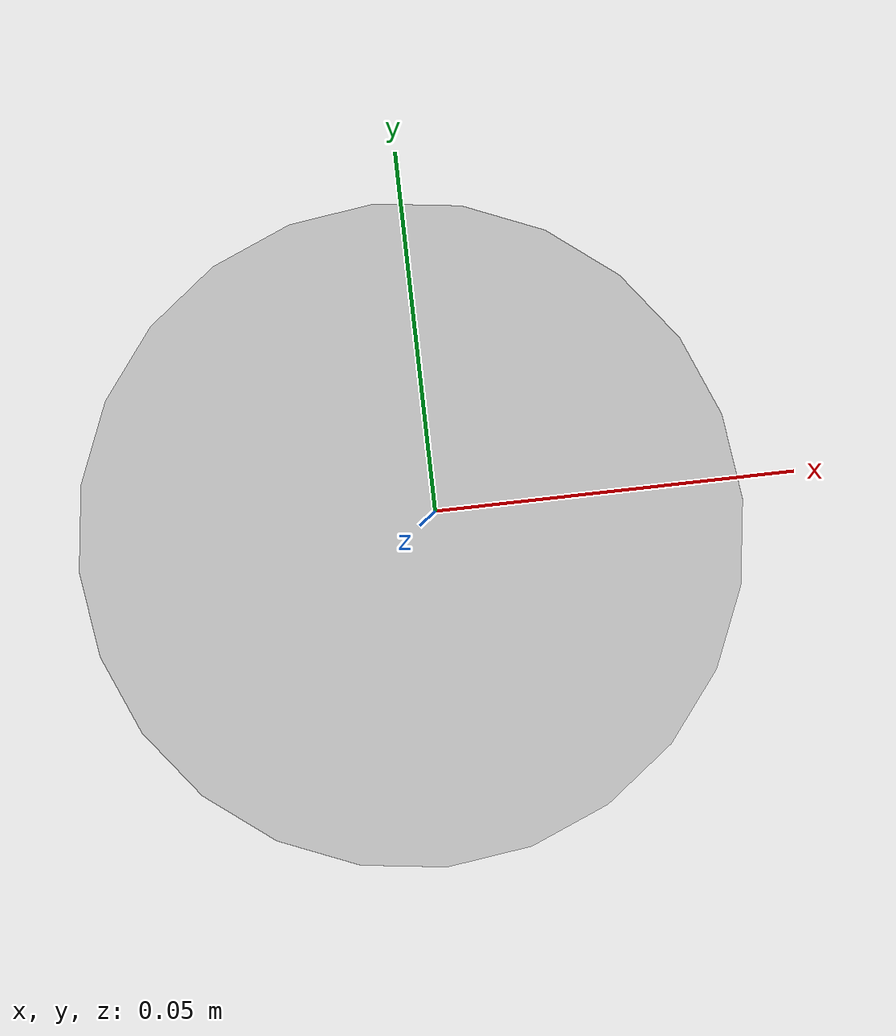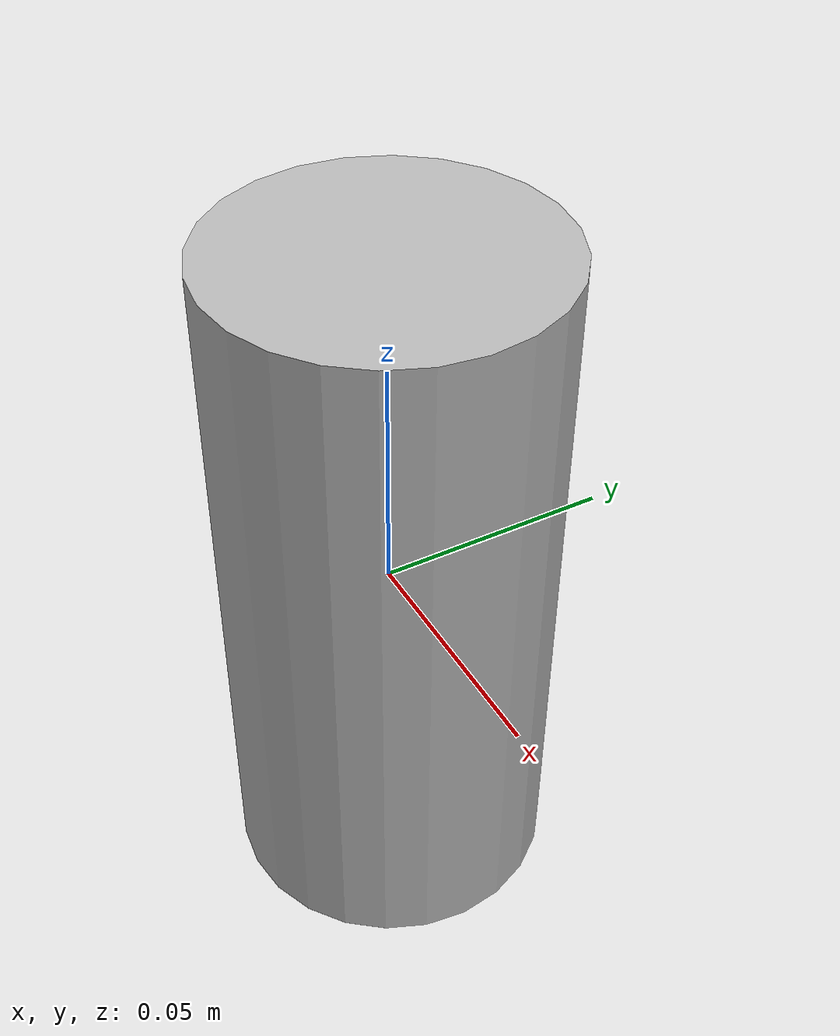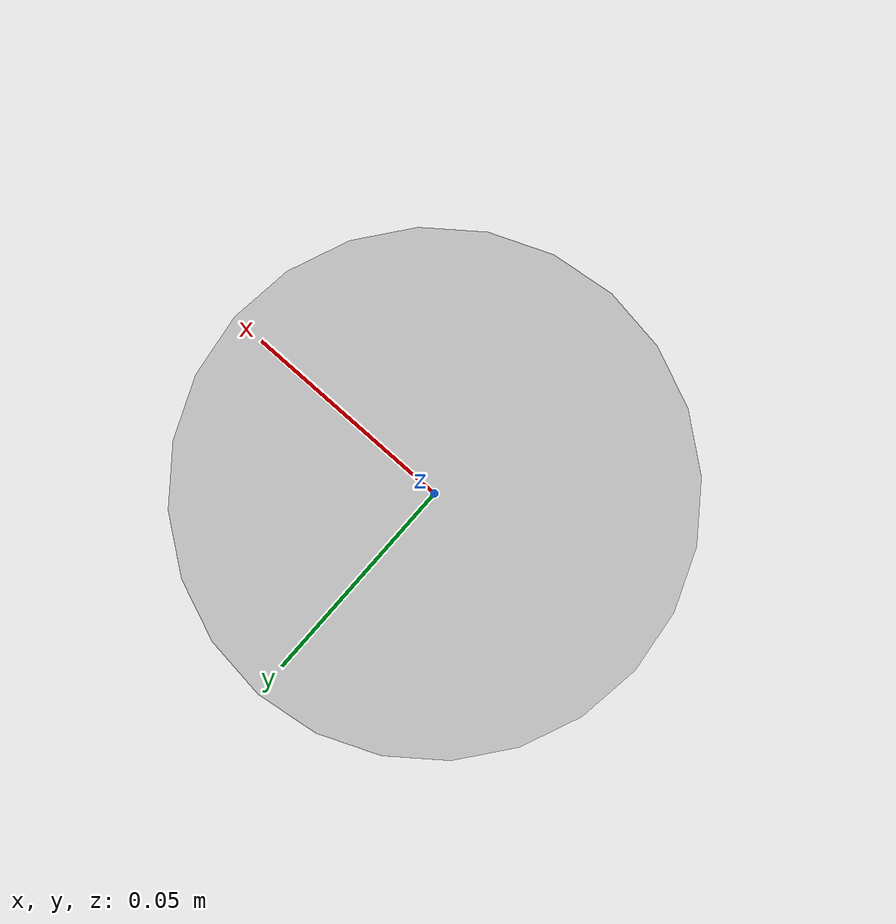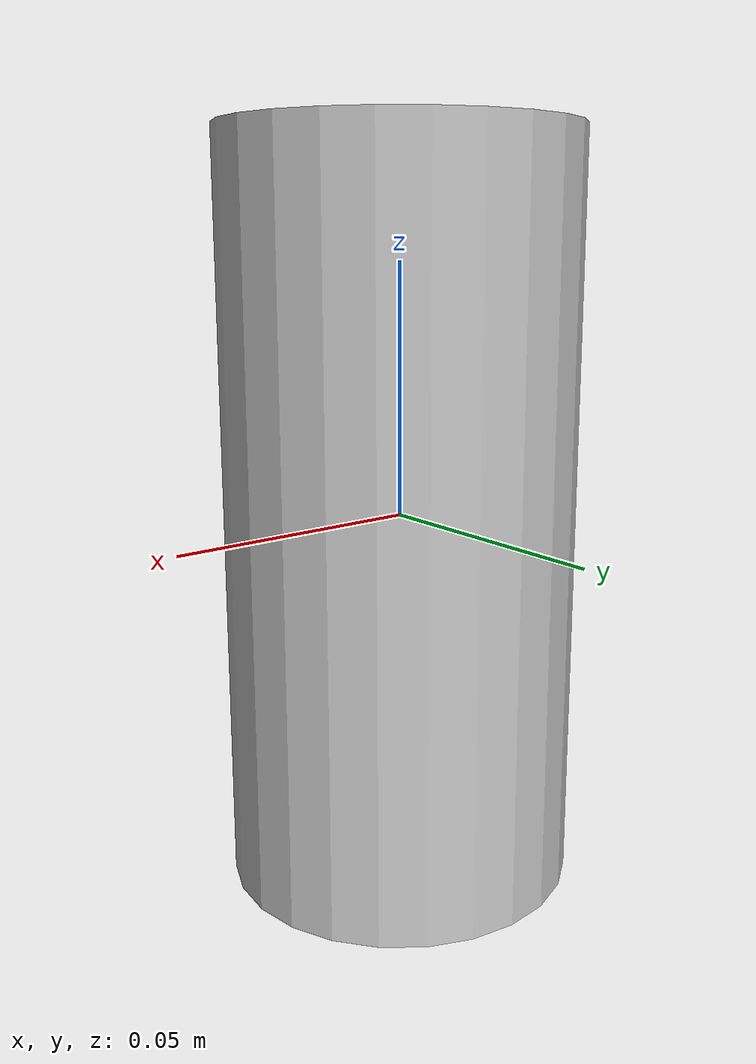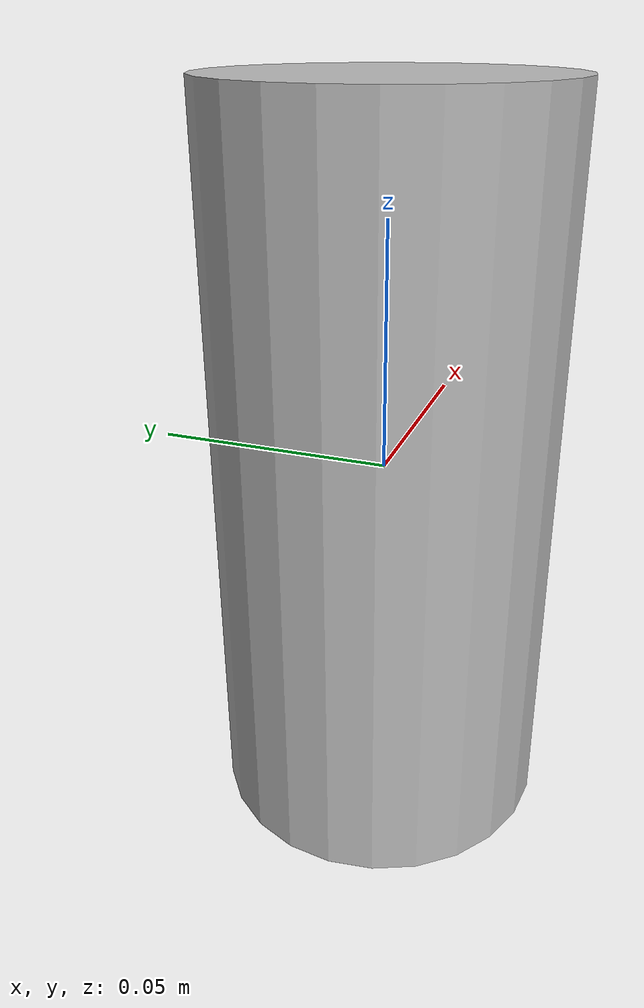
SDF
<?xml version="1.0" ?>
<sdf version='1.4'>
  <model name="biscuits_pack">
      <static>0</static>
      <link name='link'>
        <inertial>
          <mass>0.09</mass>
          <inertia>
            <ixx>0.000000</ixx>
            <ixy>0.000000</ixy>
            <ixz>0.000000</ixz>
            <iyy>0.000000</iyy>
            <iyz>0.000000</iyz>
            <izz>0.000000</izz>
          </inertia>
        </inertial>
        <collision name='collision'>
          <geometry>
            <cylinder>
              <radius>0.035</radius>
              <length>0.15</length>
            </cylinder>
          </geometry>
          <surface>
            <bounce/>
            <friction>
              <ode>
                <mu>100.0</mu>
                <mu2>100.0</mu2>
              </ode>
            </friction>
            <contact>
              <ode>
                <max_vel>0</max_vel>
                <min_depth>0.01</min_depth>
              </ode>
            </contact>
          </surface>
        </collision>
        <visual name='visual'>
          <geometry>
            <cylinder>
              <radius>0.035</radius>
              <length>0.15</length>
            </cylinder>
          </geometry>
          <material>
            <script>
              <uri>model://biscuits_pack/material/scripts</uri>
              <uri>model://biscuits_pack/material/textures</uri>
              <name>Custom/biscuits_pack</name>
            </script>
          </material>
        </visual>
        <velocity_decay>
          <linear>0.000000</linear>
          <angular>0.000000</angular>
        </velocity_decay>
        <self_collide>0</self_collide>
        <kinematic>0</kinematic>
        <gravity>1</gravity>
      </link>
  </model>
</sdf>
